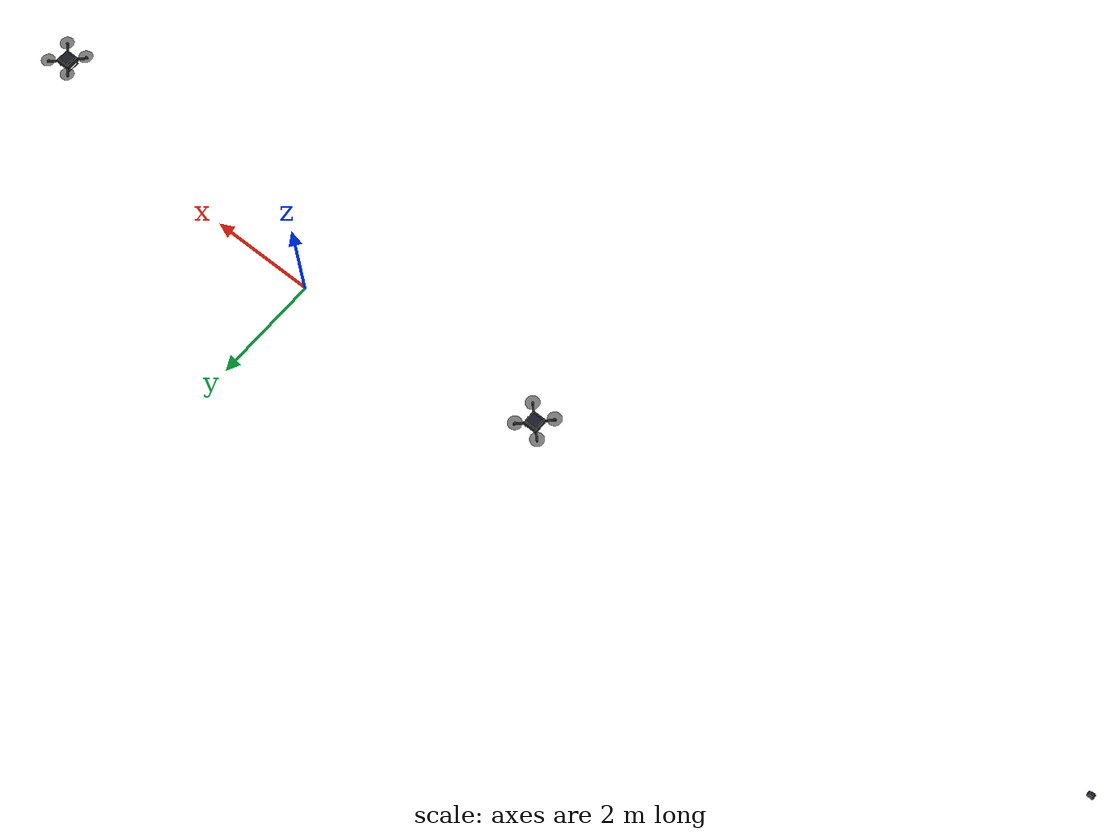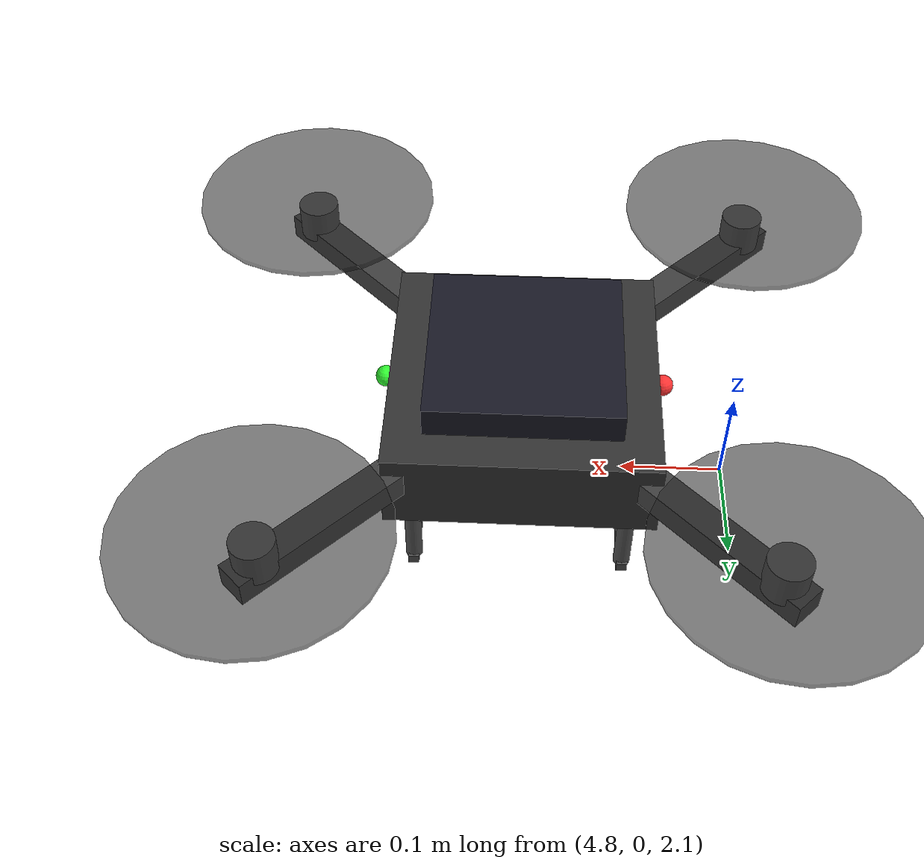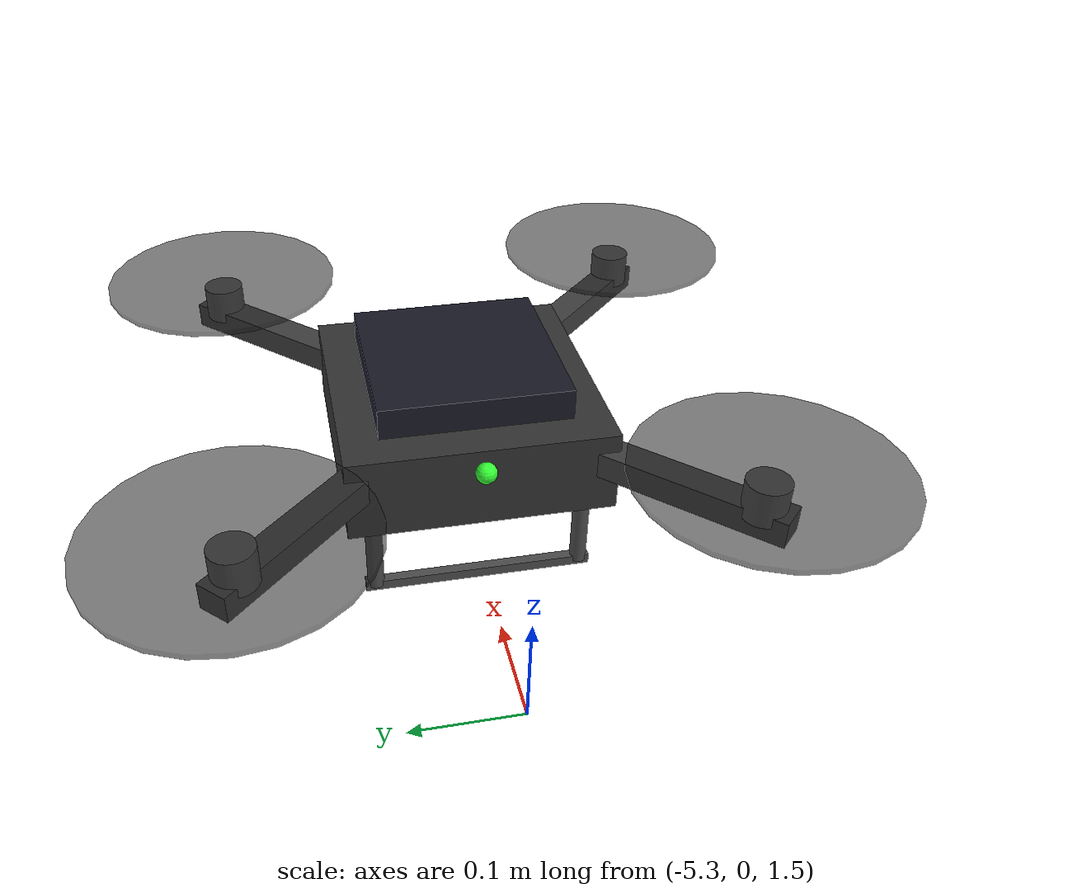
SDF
<sdf version="1.7">
 <world name="rmuc2026_radar_sim">
  <plugin filename="libignition-gazebo-physics-system.so" name="ignition::gazebo::systems::Physics"/>
  <plugin filename="libignition-gazebo-scene-broadcaster-system.so" name="ignition::gazebo::systems::SceneBroadcaster"/>
  <plugin filename="libignition-gazebo-user-commands-system.so" name="ignition::gazebo::systems::UserCommands"/>
  <plugin filename="libignition-gazebo-sensors-system.so" name="ignition::gazebo::systems::Sensors">
   <render_engine>ogre2</render_engine>
  </plugin>
  <plugin filename="libignition-gazebo-imu-system.so" name="ignition::gazebo::systems::Imu"/>
  <plugin filename="libignition-gazebo-contact-system.so" name="ignition::gazebo::systems::Contact"/>
  <physics name="default_physics" type="ode">
   <max_step_size>0.004</max_step_size>
   <real_time_factor>1.0</real_time_factor>
   <real_time_update_rate>250</real_time_update_rate>
  </physics>
  <scene><ambient>0.6 0.6 0.6 1</ambient><background>0.7 0.8 0.95 1</background><shadows>true</shadows></scene>
  <light type="directional" name="sun">
   <pose>0 0 30 0 0 0</pose>
   <diffuse>0.9 0.9 0.9 1</diffuse>
   <specular>0.3 0.3 0.3 1</specular>
   <attenuation>
    <range>1000</range>
    <constant>0.3</constant>
    <linear>0.005</linear>
    <quadratic>0.0001</quadratic>
   </attenuation>
   <direction>-0.5 0.3 -0.9</direction>
  </light>
  <light type="directional" name="fill_light">
   <cast_shadows>false</cast_shadows>
   <pose>0 0 25 0 0 0</pose>
   <diffuse>0.4 0.4 0.4 1</diffuse>
   <specular>0.1 0.1 0.1 1</specular>
   <direction>0.5 -0.3 -0.7</direction>
  </light>
  <include>
   <uri>model://aerial_robot</uri>
   <pose>-5.0 0.0 1.6 0 0 0.0</pose>
   <name>aerial_robot_blue</name>
  </include>
  <include>
   <uri>model://aerial_robot</uri>
   <pose>5.0 0.0 2.2 0 0 3.14</pose>
   <name>aerial_robot_red</name>
  </include>
  <include>
   <uri>model://radar_station</uri>
   <pose>-14.5 0 0.5 0.0 0.0 0.0</pose>
   <name>radar_station_blue</name>
  </include>
 </world>
</sdf>

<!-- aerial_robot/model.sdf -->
<!--
  RMUC2026 空中机器人 - 四旋翼无人机模型
  尺寸参考: 机身约 0.45m x 0.45m x 0.15m, 轴距约 0.55m
  静态模型，用于雷达仿真中的视觉目标
-->
<sdf version="1.7">
  <model name="aerial_robot">
    <static>true</static>

    <!-- 主机身 -->
    <link name="body">
      <inertial>
        <mass>3.5</mass>
        <inertia>
          <ixx>0.05</ixx><ixy>0</ixy><ixz>0</ixz>
          <iyy>0.05</iyy><iyz>0</iyz>
          <izz>0.08</izz>
        </inertia>
      </inertial>

      <!-- 中心机身 - 扁平六面体 -->
      <visual name="body_visual">
        <pose>0 0 0 0 0 0</pose>
        <geometry>
          <box><size>0.25 0.25 0.08</size></box>
        </geometry>
        <material>
          <ambient>0.15 0.15 0.15 1</ambient>
          <diffuse>0.2 0.2 0.2 1</diffuse>
          <specular>0.3 0.3 0.3 1</specular>
        </material>
      </visual>
      <collision name="body_collision">
        <pose>0 0 0 0 0 0</pose>
        <geometry>
          <box><size>0.25 0.25 0.08</size></box>
        </geometry>
      </collision>

      <!-- 上盖板 (电池/电控区域) -->
      <visual name="top_plate_visual">
        <pose>0 0 0.055 0 0 0</pose>
        <geometry>
          <box><size>0.18 0.18 0.03</size></box>
        </geometry>
        <material>
          <ambient>0.08 0.08 0.1 1</ambient>
          <diffuse>0.1 0.1 0.15 1</diffuse>
          <specular>0.2 0.2 0.2 1</specular>
        </material>
      </visual>

      <!-- 底部载荷/相机 -->
      <visual name="camera_visual">
        <pose>0.05 0 -0.055 0 0 0</pose>
        <geometry>
          <box><size>0.06 0.05 0.04</size></box>
        </geometry>
        <material>
          <ambient>0.05 0.05 0.05 1</ambient>
          <diffuse>0.08 0.08 0.08 1</diffuse>
          <specular>0.4 0.4 0.4 1</specular>
        </material>
      </visual>

      <!-- ===== 旋翼臂 (4个对角方向) ===== -->
      <!-- 前右臂 -->
      <visual name="arm_fr_visual">
        <pose>0.14 -0.14 0.01 0 0 -0.785</pose>
        <geometry>
          <box><size>0.28 0.03 0.025</size></box>
        </geometry>
        <material>
          <ambient>0.2 0.2 0.2 1</ambient>
          <diffuse>0.25 0.25 0.25 1</diffuse>
          <specular>0.3 0.3 0.3 1</specular>
        </material>
      </visual>

      <!-- 前左臂 -->
      <visual name="arm_fl_visual">
        <pose>0.14 0.14 0.01 0 0 0.785</pose>
        <geometry>
          <box><size>0.28 0.03 0.025</size></box>
        </geometry>
        <material>
          <ambient>0.2 0.2 0.2 1</ambient>
          <diffuse>0.25 0.25 0.25 1</diffuse>
          <specular>0.3 0.3 0.3 1</specular>
        </material>
      </visual>

      <!-- 后右臂 -->
      <visual name="arm_rr_visual">
        <pose>-0.14 -0.14 0.01 0 0 0.785</pose>
        <geometry>
          <box><size>0.28 0.03 0.025</size></box>
        </geometry>
        <material>
          <ambient>0.2 0.2 0.2 1</ambient>
          <diffuse>0.25 0.25 0.25 1</diffuse>
          <specular>0.3 0.3 0.3 1</specular>
        </material>
      </visual>

      <!-- 后左臂 -->
      <visual name="arm_rl_visual">
        <pose>-0.14 0.14 0.01 0 0 -0.785</pose>
        <geometry>
          <box><size>0.28 0.03 0.025</size></box>
        </geometry>
        <material>
          <ambient>0.2 0.2 0.2 1</ambient>
          <diffuse>0.25 0.25 0.25 1</diffuse>
          <specular>0.3 0.3 0.3 1</specular>
        </material>
      </visual>

      <!-- ===== 电机座 (4个) ===== -->
      <visual name="motor_fr_visual">
        <pose>0.22 -0.22 0.03 0 0 0</pose>
        <geometry>
          <cylinder><radius>0.02</radius><length>0.035</length></cylinder>
        </geometry>
        <material>
          <ambient>0.3 0.3 0.3 1</ambient>
          <diffuse>0.35 0.35 0.35 1</diffuse>
        </material>
      </visual>

      <visual name="motor_fl_visual">
        <pose>0.22 0.22 0.03 0 0 0</pose>
        <geometry>
          <cylinder><radius>0.02</radius><length>0.035</length></cylinder>
        </geometry>
        <material>
          <ambient>0.3 0.3 0.3 1</ambient>
          <diffuse>0.35 0.35 0.35 1</diffuse>
        </material>
      </visual>

      <visual name="motor_rr_visual">
        <pose>-0.22 -0.22 0.03 0 0 0</pose>
        <geometry>
          <cylinder><radius>0.02</radius><length>0.035</length></cylinder>
        </geometry>
        <material>
          <ambient>0.3 0.3 0.3 1</ambient>
          <diffuse>0.35 0.35 0.35 1</diffuse>
        </material>
      </visual>

      <visual name="motor_rl_visual">
        <pose>-0.22 0.22 0.03 0 0 0</pose>
        <geometry>
          <cylinder><radius>0.02</radius><length>0.035</length></cylinder>
        </geometry>
        <material>
          <ambient>0.3 0.3 0.3 1</ambient>
          <diffuse>0.35 0.35 0.35 1</diffuse>
        </material>
      </visual>

      <!-- ===== 螺旋桨 (4个扁平圆盘表示) ===== -->
      <visual name="prop_fr_visual">
        <pose>0.22 -0.22 0.055 0 0 0</pose>
        <geometry>
          <cylinder><radius>0.12</radius><length>0.005</length></cylinder>
        </geometry>
        <material>
          <ambient>0.1 0.1 0.1 0.6</ambient>
          <diffuse>0.15 0.15 0.15 0.6</diffuse>
        </material>
      </visual>

      <visual name="prop_fl_visual">
        <pose>0.22 0.22 0.055 0 0 0</pose>
        <geometry>
          <cylinder><radius>0.12</radius><length>0.005</length></cylinder>
        </geometry>
        <material>
          <ambient>0.1 0.1 0.1 0.6</ambient>
          <diffuse>0.15 0.15 0.15 0.6</diffuse>
        </material>
      </visual>

      <visual name="prop_rr_visual">
        <pose>-0.22 -0.22 0.055 0 0 0</pose>
        <geometry>
          <cylinder><radius>0.12</radius><length>0.005</length></cylinder>
        </geometry>
        <material>
          <ambient>0.1 0.1 0.1 0.6</ambient>
          <diffuse>0.15 0.15 0.15 0.6</diffuse>
        </material>
      </visual>

      <visual name="prop_rl_visual">
        <pose>-0.22 0.22 0.055 0 0 0</pose>
        <geometry>
          <cylinder><radius>0.12</radius><length>0.005</length></cylinder>
        </geometry>
        <material>
          <ambient>0.1 0.1 0.1 0.6</ambient>
          <diffuse>0.15 0.15 0.15 0.6</diffuse>
        </material>
      </visual>

      <!-- ===== 起落架 (4根细柱) ===== -->
      <visual name="leg_fr_visual">
        <pose>0.1 -0.1 -0.07 0 0 0</pose>
        <geometry>
          <cylinder><radius>0.008</radius><length>0.1</length></cylinder>
        </geometry>
        <material>
          <ambient>0.25 0.25 0.25 1</ambient>
          <diffuse>0.3 0.3 0.3 1</diffuse>
        </material>
      </visual>

      <visual name="leg_fl_visual">
        <pose>0.1 0.1 -0.07 0 0 0</pose>
        <geometry>
          <cylinder><radius>0.008</radius><length>0.1</length></cylinder>
        </geometry>
        <material>
          <ambient>0.25 0.25 0.25 1</ambient>
          <diffuse>0.3 0.3 0.3 1</diffuse>
        </material>
      </visual>

      <visual name="leg_rr_visual">
        <pose>-0.1 -0.1 -0.07 0 0 0</pose>
        <geometry>
          <cylinder><radius>0.008</radius><length>0.1</length></cylinder>
        </geometry>
        <material>
          <ambient>0.25 0.25 0.25 1</ambient>
          <diffuse>0.3 0.3 0.3 1</diffuse>
        </material>
      </visual>

      <visual name="leg_rl_visual">
        <pose>-0.1 0.1 -0.07 0 0 0</pose>
        <geometry>
          <cylinder><radius>0.008</radius><length>0.1</length></cylinder>
        </geometry>
        <material>
          <ambient>0.25 0.25 0.25 1</ambient>
          <diffuse>0.3 0.3 0.3 1</diffuse>
        </material>
      </visual>

      <!-- 起落架横杆 (前后各一根) -->
      <visual name="skid_front_visual">
        <pose>0.1 0 -0.12 0 0 0</pose>
        <geometry>
          <box><size>0.01 0.22 0.01</size></box>
        </geometry>
        <material>
          <ambient>0.25 0.25 0.25 1</ambient>
          <diffuse>0.3 0.3 0.3 1</diffuse>
        </material>
      </visual>

      <visual name="skid_rear_visual">
        <pose>-0.1 0 -0.12 0 0 0</pose>
        <geometry>
          <box><size>0.01 0.22 0.01</size></box>
        </geometry>
        <material>
          <ambient>0.25 0.25 0.25 1</ambient>
          <diffuse>0.3 0.3 0.3 1</diffuse>
        </material>
      </visual>

      <!-- ===== LED指示灯 (前方红色，后方绿色，便于辨别朝向) ===== -->
      <visual name="led_front_visual">
        <pose>0.13 0 0.02 0 0 0</pose>
        <geometry>
          <sphere><radius>0.01</radius></sphere>
        </geometry>
        <material>
          <ambient>1.0 0.1 0.1 1</ambient>
          <diffuse>1.0 0.2 0.2 1</diffuse>
          <emissive>0.8 0.1 0.1 1</emissive>
        </material>
      </visual>

      <visual name="led_rear_visual">
        <pose>-0.13 0 0.02 0 0 0</pose>
        <geometry>
          <sphere><radius>0.01</radius></sphere>
        </geometry>
        <material>
          <ambient>0.1 1.0 0.1 1</ambient>
          <diffuse>0.2 1.0 0.2 1</diffuse>
          <emissive>0.1 0.8 0.1 1</emissive>
        </material>
      </visual>

      <!-- 整体碰撞盒 -->
      <collision name="full_collision">
        <pose>0 0 0 0 0 0</pose>
        <geometry>
          <box><size>0.55 0.55 0.18</size></box>
        </geometry>
      </collision>
    </link>
  </model>
</sdf>

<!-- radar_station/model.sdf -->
<sdf version="1.7">
  <model name="radar_station">
    <static>true</static>

    <!-- ===== 雷达基座平台 (3.4m x 1.16m, 高2.5m) ===== -->
    <link name="base_link">
      <pose>0 0 0 0 0 0</pose>
    </link>

    <!-- 支撑柱和平台已移除，仅保留三脚架支撑传感器 -->

    <!-- 三脚架/平台/支撑柱均已移除，传感器直接挂在base_link上 -->

    <!-- Livox HAP 激光雷达 (平台上)                    -->
    <!-- 高度: 2.5m (距离地面)                        -->
    <!-- pitch=0.2618rad(15°) 向下倾斜覆盖赛场         -->
    <!-- 垂直FOV ±45° → 覆盖从向上30°到向下60°        -->
    <link name="livox_hap">
      <pose>0 0 2.5 0 0 0</pose>
      <visual name="lidar_body">
        <geometry><box><size>0.1 0.06 0.06</size></box></geometry>
        <material><ambient>0.05 0.05 0.05 1</ambient><diffuse>0.1 0.1 0.1 1</diffuse></material>
      </visual>
      <collision name="c"><geometry><box><size>0.1 0.06 0.06</size></box></geometry></collision>

      <sensor name="livox_hap_lidar" type="gpu_lidar">
        <pose>0 0 0 0 0 0</pose>
        <always_on>true</always_on>
        <update_rate>10</update_rate>
        <topic>livox/lidar</topic>
        <visualize>true</visualize>
        <lidar>
          <scan>
            <horizontal>
              <!-- 水平FOV: ±125° (250°总) -->
              <samples>2500</samples>
              <resolution>1</resolution>
              <min_angle>-2.182</min_angle>
              <max_angle>2.182</max_angle>
            </horizontal>
            <vertical>
              <!-- 垂直FOV: ±45° (90°总)，覆盖近处到远处 -->
              <samples>360</samples>
              <resolution>1</resolution>
              <min_angle>-0.7854</min_angle>
              <max_angle>0.7854</max_angle>
            </vertical>
          </scan>
          <range>
            <min>0.2</min>
            <max>150.0</max>
            <resolution>0.002</resolution>
          </range>
          <noise>
            <type>gaussian</type>
            <mean>0.0</mean>
            <stddev>0.01</stddev>
          </noise>
        </lidar>
      </sensor>
    </link>
    <joint name="j_lidar" type="fixed"><parent>base_link</parent><child>livox_hap</child></joint>

    <!-- 工业相机 (固定在激光雷达正上方)                 -->
    <!-- CS060 + 6mm镜头, FOV≈61°                     -->
    <!-- pitch=0.3491rad(20°) 向下倾斜                 -->
    <!-- 垂直半角~20° → 覆盖从水平到向下40°            -->
    <!-- 能看到近处约x=-13.5处的赛场区域                -->
    <link name="camera_link">
      <pose>0 0 2.555 0 0 0</pose>
      <visual name="camera_body">
        <geometry><box><size>0.05 0.05 0.05</size></box></geometry>
        <material><ambient>0.05 0.05 0.12 1</ambient><diffuse>0.1 0.1 0.2 1</diffuse></material>
      </visual>
      <collision name="c"><geometry><box><size>0.05 0.05 0.05</size></box></geometry></collision>

      <sensor name="radar_camera" type="camera">
        <pose>0 0 0 0 0 0</pose>
        <always_on>true</always_on>
        <update_rate>30</update_rate>
        <topic>radar/camera</topic>
        <visualize>true</visualize>
        <camera>
          <!-- CS060 + 6mm镜头: FOV≈61° -->
          <horizontal_fov>1.065</horizontal_fov>
          <image>
            <width>3072</width>
            <height>2048</height>
            <format>R8G8B8</format>
          </image>
          <clip>
            <near>0.1</near>
            <far>100</far>
          </clip>
          <noise>
            <type>gaussian</type>
            <mean>0.0</mean>
            <stddev>0.007</stddev>
          </noise>
        </camera>
      </sensor>
    </link>
    <joint name="j_camera" type="fixed"><parent>livox_hap</parent><child>camera_link</child></joint>

  </model>
</sdf>
